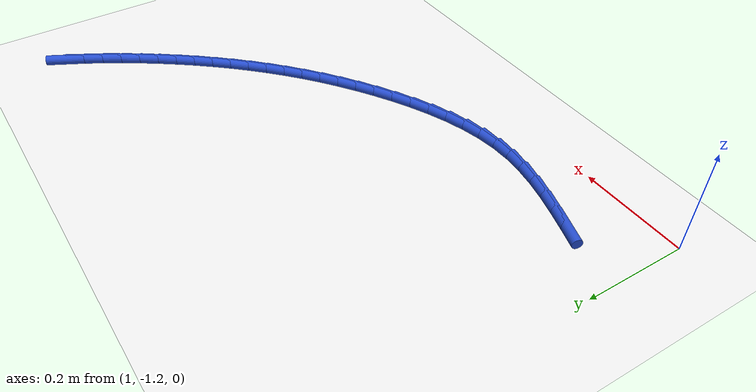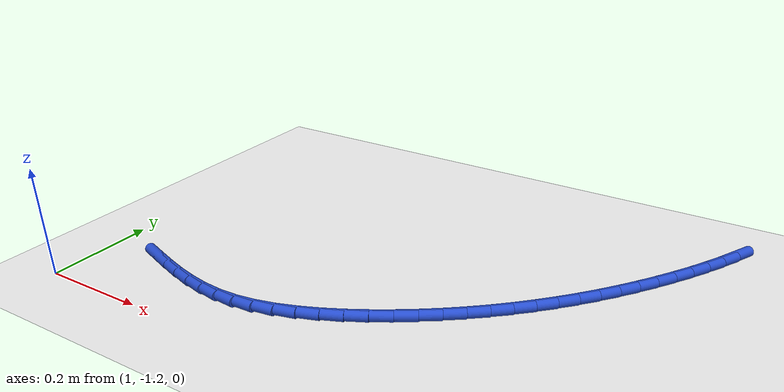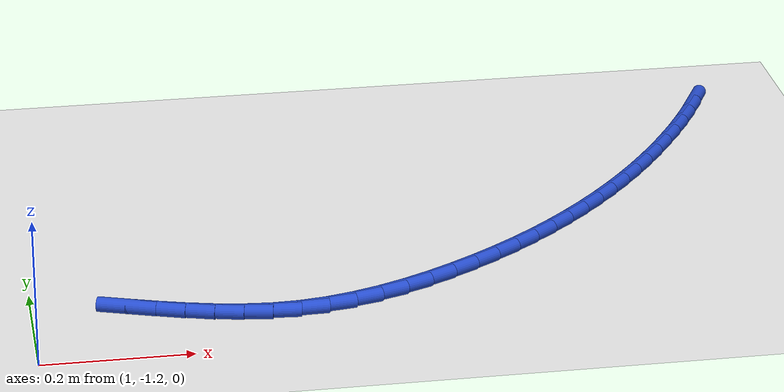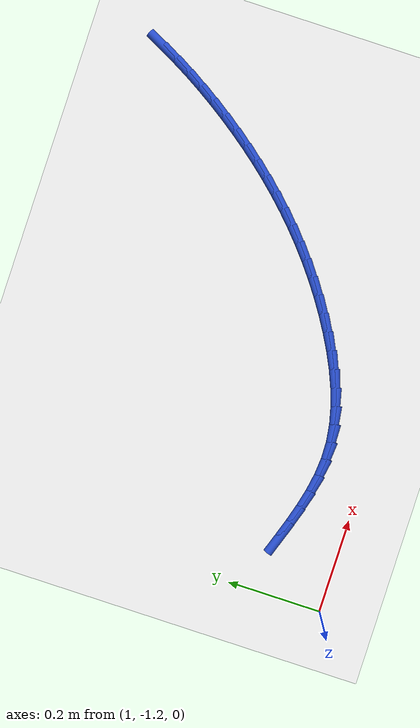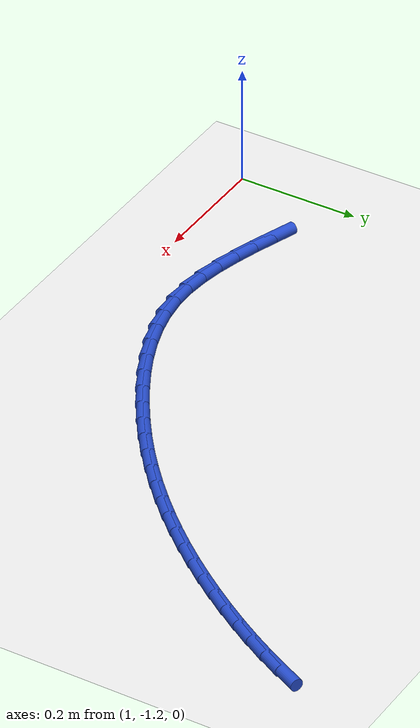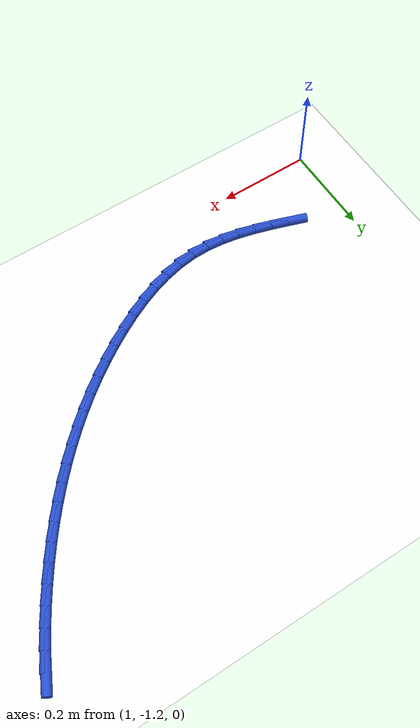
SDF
<sdf version="1.6">
 <world name="default">
  <model name="ground_plane">
   <static>1</static>
   <link name="link">
    <collision name="collision">
     <geometry><plane><normal>0 0 1</normal><size>100 100</size></plane></geometry>
     <surface><friction><ode><mu>100</mu><mu2>50</mu2></ode></friction></surface>
    </collision>
    <visual name="visual">
     <cast_shadows>0</cast_shadows>
     <geometry><plane><normal>0 0 1</normal><size>100 100</size></plane></geometry>
     <material>
      <script><uri>file://media/materials/scripts/gazebo.material</uri><name>Gazebo/WhiteGlow</name></script>
     </material>
    </visual>
   </link>
  </model>
  <model name="line">
   <link name="link_105">
    <pose>2.020593283645155 -0.5247319934576135 0.01 0 1.57 1.1028127085200135</pose>
    <collision name="collision">
     <geometry><cylinder><radius>0.01</radius><length>0.08</length></cylinder></geometry>
    </collision>
    <visual name="visual">
     <material>
      <script><name>Gazebo/Blue</name><uri>file://media/materials/scripts/gazebo.material</uri></script>
     </material>
     <geometry><cylinder><radius>0.01</radius><length>0.08</length></cylinder></geometry>
    </visual>
   </link>
   <link name="link_106">
    <pose>2.003151870511288 -0.5592399377142084 0.01 0 1.57 1.065838411165277</pose>
    <collision name="collision">
     <geometry><cylinder><radius>0.01</radius><length>0.08</length></cylinder></geometry>
    </collision>
    <visual name="visual">
     <material>
      <script><name>Gazebo/Blue</name><uri>file://media/materials/scripts/gazebo.material</uri></script>
     </material>
     <geometry><cylinder><radius>0.01</radius><length>0.08</length></cylinder></geometry>
    </visual>
   </link>
   <link name="link_107">
    <pose>1.9843862802288084 -0.5931889775753194 0.01 0 1.57 1.0332072154840328</pose>
    <collision name="collision">
     <geometry><cylinder><radius>0.01</radius><length>0.08</length></cylinder></geometry>
    </collision>
    <visual name="visual">
     <material>
      <script><name>Gazebo/Blue</name><uri>file://media/materials/scripts/gazebo.material</uri></script>
     </material>
     <geometry><cylinder><radius>0.01</radius><length>0.08</length></cylinder></geometry>
    </visual>
   </link>
   <link name="link_108">
    <pose>1.9644973026329642 -0.6265509465962384 0.01 0 1.57 1.0046505965355876</pose>
    <collision name="collision">
     <geometry><cylinder><radius>0.01</radius><length>0.08</length></cylinder></geometry>
    </collision>
    <visual name="visual">
     <material>
      <script><name>Gazebo/Blue</name><uri>file://media/materials/scripts/gazebo.material</uri></script>
     </material>
     <geometry><cylinder><radius>0.01</radius><length>0.08</length></cylinder></geometry>
    </visual>
   </link>
   <link name="link_109">
    <pose>1.9436853172113278 -0.6592976643949715 0.01 0 1.57 0.9784916603497278</pose>
    <collision name="collision">
     <geometry><cylinder><radius>0.01</radius><length>0.08</length></cylinder></geometry>
    </collision>
    <visual name="visual">
     <material>
      <script><name>Gazebo/Blue</name><uri>file://media/materials/scripts/gazebo.material</uri></script>
     </material>
     <geometry><cylinder><radius>0.01</radius><length>0.08</length></cylinder></geometry>
    </visual>
   </link>
   <link name="link_110">
    <pose>1.9220845701000353 -0.6913987043981695 0.01 0 1.57 0.9515873185597096</pose>
    <collision name="collision">
     <geometry><cylinder><radius>0.01</radius><length>0.08</length></cylinder></geometry>
    </collision>
    <visual name="visual">
     <material>
      <script><name>Gazebo/Blue</name><uri>file://media/materials/scripts/gazebo.material</uri></script>
     </material>
     <geometry><cylinder><radius>0.01</radius><length>0.08</length></cylinder></geometry>
    </visual>
   </link>
   <link name="link_111">
    <pose>1.8996908808169635 -0.7228189384308522 0.01 0 1.57 0.9235450106625145</pose>
    <collision name="collision">
     <geometry><cylinder><radius>0.01</radius><length>0.08</length></cylinder></geometry>
    </collision>
    <visual name="visual">
     <material>
      <script><name>Gazebo/Blue</name><uri>file://media/materials/scripts/gazebo.material</uri></script>
     </material>
     <geometry><cylinder><radius>0.01</radius><length>0.08</length></cylinder></geometry>
    </visual>
   </link>
   <link name="link_112">
    <pose>1.8764826761483366 -0.753522647581253 0.01 0 1.57 0.8943654853542936</pose>
    <collision name="collision">
     <geometry><cylinder><radius>0.01</radius><length>0.08</length></cylinder></geometry>
    </collision>
    <visual name="visual">
     <material>
      <script><name>Gazebo/Blue</name><uri>file://media/materials/scripts/gazebo.material</uri></script>
     </material>
     <geometry><cylinder><radius>0.01</radius><length>0.08</length></cylinder></geometry>
    </visual>
   </link>
   <link name="link_113">
    <pose>1.8524383828803805 -0.7834741129376054 0.01 0 1.57 0.8640575323885824</pose>
    <collision name="collision">
     <geometry><cylinder><radius>0.01</radius><length>0.08</length></cylinder></geometry>
    </collision>
    <visual name="visual">
     <material>
      <script><name>Gazebo/Blue</name><uri>file://media/materials/scripts/gazebo.material</uri></script>
     </material>
     <geometry><cylinder><radius>0.01</radius><length>0.08</length></cylinder></geometry>
    </visual>
   </link>
   <link name="link_114">
    <pose>1.8275364277993174 -0.8126376155881425 0.01 0 1.57 0.8326391002740492</pose>
    <collision name="collision">
     <geometry><cylinder><radius>0.01</radius><length>0.08</length></cylinder></geometry>
    </collision>
    <visual name="visual">
     <material>
      <script><name>Gazebo/Blue</name><uri>file://media/materials/scripts/gazebo.material</uri></script>
     </material>
     <geometry><cylinder><radius>0.01</radius><length>0.08</length></cylinder></geometry>
    </visual>
   </link>
   <link name="link_115">
    <pose>1.8017552376913728 -0.8409774366210988 0.01 0 1.57 0.8001383531054367</pose>
    <collision name="collision">
     <geometry><cylinder><radius>0.01</radius><length>0.08</length></cylinder></geometry>
    </collision>
    <visual name="visual">
     <material>
      <script><name>Gazebo/Blue</name><uri>file://media/materials/scripts/gazebo.material</uri></script>
     </material>
     <geometry><cylinder><radius>0.01</radius><length>0.08</length></cylinder></geometry>
    </visual>
   </link>
   <link name="link_116">
    <pose>1.7750732393427717 -0.8684578571247061 0.01 0 1.57 0.7665946086437836</pose>
    <collision name="collision">
     <geometry><cylinder><radius>0.01</radius><length>0.08</length></cylinder></geometry>
    </collision>
    <visual name="visual">
     <material>
      <script><name>Gazebo/Blue</name><uri>file://media/materials/scripts/gazebo.material</uri></script>
     </material>
     <geometry><cylinder><radius>0.01</radius><length>0.08</length></cylinder></geometry>
    </visual>
   </link>
   <link name="link_117">
    <pose>1.7474688595397385 -0.895043158187199 0.01 0 1.57 0.7320590926888093</pose>
    <collision name="collision">
     <geometry><cylinder><radius>0.01</radius><length>0.08</length></cylinder></geometry>
    </collision>
    <visual name="visual">
     <material>
      <script><name>Gazebo/Blue</name><uri>file://media/materials/scripts/gazebo.material</uri></script>
     </material>
     <geometry><cylinder><radius>0.01</radius><length>0.08</length></cylinder></geometry>
    </visual>
   </link>
   <link name="link_118">
    <pose>1.718920525068497 -0.9206976208968102 0.01 0 1.57 0.6965954412610812</pose>
    <collision name="collision">
     <geometry><cylinder><radius>0.01</radius><length>0.08</length></cylinder></geometry>
    </collision>
    <visual name="visual">
     <material>
      <script><name>Gazebo/Blue</name><uri>file://media/materials/scripts/gazebo.material</uri></script>
     </material>
     <geometry><cylinder><radius>0.01</radius><length>0.08</length></cylinder></geometry>
    </visual>
   </link>
   <link name="link_119">
    <pose>1.6894066627152717 -0.9453855263417734 0.01 0 1.57 0.6602798835986974</pose>
    <collision name="collision">
     <geometry><cylinder><radius>0.01</radius><length>0.08</length></cylinder></geometry>
    </collision>
    <visual name="visual">
     <material>
      <script><name>Gazebo/Blue</name><uri>file://media/materials/scripts/gazebo.material</uri></script>
     </material>
     <geometry><cylinder><radius>0.01</radius><length>0.08</length></cylinder></geometry>
    </visual>
   </link>
   <link name="link_120">
    <pose>1.658905699266287 -0.9690711556103228 0.01 0 1.57 0.6232010467264986</pose>
    <collision name="collision">
     <geometry><cylinder><radius>0.01</radius><length>0.08</length></cylinder></geometry>
    </collision>
    <visual name="visual">
     <material>
      <script><name>Gazebo/Blue</name><uri>file://media/materials/scripts/gazebo.material</uri></script>
     </material>
     <geometry><cylinder><radius>0.01</radius><length>0.08</length></cylinder></geometry>
    </visual>
   </link>
   <link name="link_121">
    <pose>1.6273960615077683 -0.9917187897906907 0.01 0 1.57 0.5854593370964976</pose>
    <collision name="collision">
     <geometry><cylinder><radius>0.01</radius><length>0.08</length></cylinder></geometry>
    </collision>
    <visual name="visual">
     <material>
      <script><name>Gazebo/Blue</name><uri>file://media/materials/scripts/gazebo.material</uri></script>
     </material>
     <geometry><cylinder><radius>0.01</radius><length>0.08</length></cylinder></geometry>
    </visual>
   </link>
   <link name="link_122">
    <pose>1.5948561762259392 -1.013292709971111 0.01 0 1.57 0.547132905321613</pose>
    <collision name="collision">
     <geometry><cylinder><radius>0.01</radius><length>0.08</length></cylinder></geometry>
    </collision>
    <visual name="visual">
     <material>
      <script><name>Gazebo/Blue</name><uri>file://media/materials/scripts/gazebo.material</uri></script>
     </material>
     <geometry><cylinder><radius>0.01</radius><length>0.08</length></cylinder></geometry>
    </visual>
   </link>
   <link name="link_123">
    <pose>1.5612653639040677 -1.0337551342450626 0.01 0 1.57 0.5056141817886866</pose>
    <collision name="collision">
     <geometry><cylinder><radius>0.01</radius><length>0.08</length></cylinder></geometry>
    </collision>
    <visual name="visual">
     <material>
      <script><name>Gazebo/Blue</name><uri>file://media/materials/scripts/gazebo.material</uri></script>
     </material>
     <geometry><cylinder><radius>0.01</radius><length>0.08</length></cylinder></geometry>
    </visual>
   </link>
   <link name="link_124">
    <pose>1.5266733369904821 -1.0529057891147955 0.01 0 1.57 0.4557072311325494</pose>
    <collision name="collision">
     <geometry><cylinder><radius>0.01</radius><length>0.08</length></cylinder></geometry>
    </collision>
    <visual name="visual">
     <material>
      <script><name>Gazebo/Blue</name><uri>file://media/materials/scripts/gazebo.material</uri></script>
     </material>
     <geometry><cylinder><radius>0.01</radius><length>0.08</length></cylinder></geometry>
    </visual>
   </link>
   <link name="link_125">
    <pose>1.491249837483556 -1.070267326951089 0.01 0 1.57 0.3956741168832094</pose>
    <collision name="collision">
     <geometry><cylinder><radius>0.01</radius><length>0.08</length></cylinder></geometry>
    </collision>
    <visual name="visual">
     <material>
      <script><name>Gazebo/Blue</name><uri>file://media/materials/scripts/gazebo.material</uri></script>
     </material>
     <geometry><cylinder><radius>0.01</radius><length>0.08</length></cylinder></geometry>
    </visual>
   </link>
   <link name="link_126">
    <pose>1.4551763237544568 -1.0853353542529809 0.01 0 1.57 0.3239516032862178</pose>
    <collision name="collision">
     <geometry><cylinder><radius>0.01</radius><length>0.08</length></cylinder></geometry>
    </collision>
    <visual name="visual">
     <material>
      <script><name>Gazebo/Blue</name><uri>file://media/materials/scripts/gazebo.material</uri></script>
     </material>
     <geometry><cylinder><radius>0.01</radius><length>0.08</length></cylinder></geometry>
    </visual>
   </link>
   <link name="link_127">
    <pose>1.4186342541743535 -1.0976054775195079 0.01 0 1.57 0.23884976242004316</pose>
    <collision name="collision">
     <geometry><cylinder><radius>0.01</radius><length>0.08</length></cylinder></geometry>
    </collision>
    <visual name="visual">
     <material>
      <script><name>Gazebo/Blue</name><uri>file://media/materials/scripts/gazebo.material</uri></script>
     </material>
     <geometry><cylinder><radius>0.01</radius><length>0.08</length></cylinder></geometry>
    </visual>
   </link>
   <link name="link_128">
    <pose>1.3818050871144139 -1.1065733032497078 0.01 0 1.57 0.1388373421225055</pose>
    <collision name="collision">
     <geometry><cylinder><radius>0.01</radius><length>0.08</length></cylinder></geometry>
    </collision>
    <visual name="visual">
     <material>
      <script><name>Gazebo/Blue</name><uri>file://media/materials/scripts/gazebo.material</uri></script>
     </material>
     <geometry><cylinder><radius>0.01</radius><length>0.08</length></cylinder></geometry>
    </visual>
   </link>
   <link name="link_129">
    <pose>1.3448702809458044 -1.1117344379426175 0.01 0 1.57 0.024803933862125285</pose>
    <collision name="collision">
     <geometry><cylinder><radius>0.01</radius><length>0.08</length></cylinder></geometry>
    </collision>
    <visual name="visual">
     <material>
      <script><name>Gazebo/Blue</name><uri>file://media/materials/scripts/gazebo.material</uri></script>
     </material>
     <geometry><cylinder><radius>0.01</radius><length>0.08</length></cylinder></geometry>
    </visual>
   </link>
   <link name="link_130">
    <pose>1.3079988574753059 -1.112649181893683 0.01 0 1.57 -0.08349620742181163</pose>
    <collision name="collision">
     <geometry><cylinder><radius>0.01</radius><length>0.08</length></cylinder></geometry>
    </collision>
    <visual name="visual">
     <material>
      <script><name>Gazebo/Blue</name><uri>file://media/materials/scripts/gazebo.material</uri></script>
     </material>
     <geometry><cylinder><radius>0.01</radius><length>0.08</length></cylinder></geometry>
    </visual>
   </link>
   <link name="link_131">
    <pose>1.2712264574106356 -1.1095716708819894 0.01 0 1.57 -0.1724104004024309</pose>
    <collision name="collision">
     <geometry><cylinder><radius>0.01</radius><length>0.08</length></cylinder></geometry>
    </collision>
    <visual name="visual">
     <material>
      <script><name>Gazebo/Blue</name><uri>file://media/materials/scripts/gazebo.material</uri></script>
     </material>
     <geometry><cylinder><radius>0.01</radius><length>0.08</length></cylinder></geometry>
    </visual>
   </link>
   <link name="link_132">
    <pose>1.2345077025121076 -1.103177493358355 0.01 0 1.57 -0.2411656977083214</pose>
    <collision name="collision">
     <geometry><cylinder><radius>0.01</radius><length>0.08</length></cylinder></geometry>
    </collision>
    <visual name="visual">
     <material>
      <script><name>Gazebo/Blue</name><uri>file://media/materials/scripts/gazebo.material</uri></script>
     </material>
     <geometry><cylinder><radius>0.01</radius><length>0.08</length></cylinder></geometry>
    </visual>
   </link>
   <link name="link_133">
    <pose>1.1977960733595585 -1.094148174083265 0.01 0 1.57 -0.2903987445344718</pose>
    <collision name="collision">
     <geometry><cylinder><radius>0.01</radius><length>0.08</length></cylinder></geometry>
    </collision>
    <visual name="visual">
     <material>
      <script><name>Gazebo/Blue</name><uri>file://media/materials/scripts/gazebo.material</uri></script>
     </material>
     <geometry><cylinder><radius>0.01</radius><length>0.08</length></cylinder></geometry>
    </visual>
   </link>
   <link name="link_134">
    <pose>1.1610450505328238 -1.0831652378172054 0.01 0 1.57 -0.3211652904059786</pose>
    <collision name="collision">
     <geometry><cylinder><radius>0.01</radius><length>0.08</length></cylinder></geometry>
    </collision>
    <visual name="visual">
     <material>
      <script><name>Gazebo/Blue</name><uri>file://media/materials/scripts/gazebo.material</uri></script>
     </material>
     <geometry><cylinder><radius>0.01</radius><length>0.08</length></cylinder></geometry>
    </visual>
   </link>
   <link name="link_135">
    <pose>1.1242081146117398 -1.0709102093206608 0.01 0 1.57 -0.33441551424580657</pose>
    <collision name="collision">
     <geometry><cylinder><radius>0.01</radius><length>0.08</length></cylinder></geometry>
    </collision>
    <visual name="visual">
     <material>
      <script><name>Gazebo/Blue</name><uri>file://media/materials/scripts/gazebo.material</uri></script>
     </material>
     <geometry><cylinder><radius>0.01</radius><length>0.08</length></cylinder></geometry>
    </visual>
   </link>
  </model>
 </world>
</sdf>
